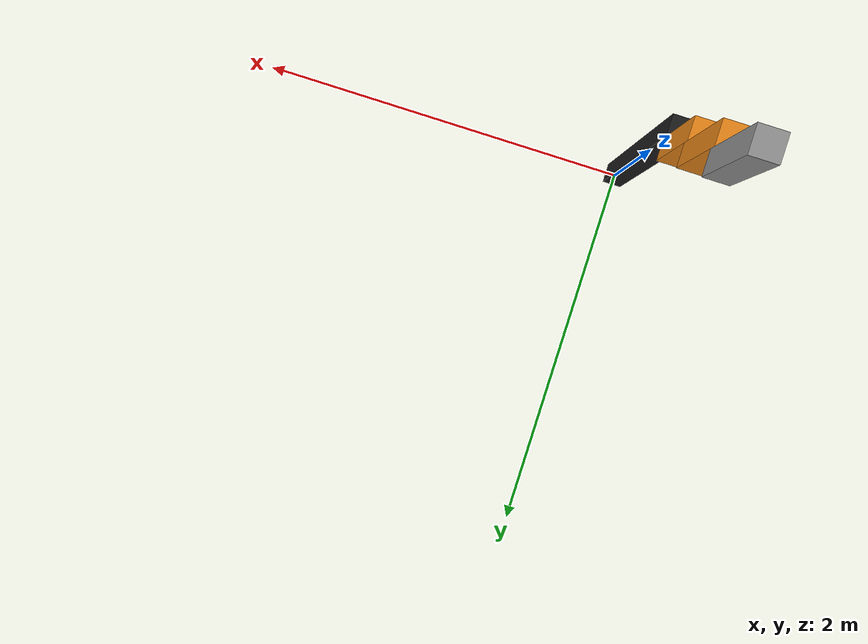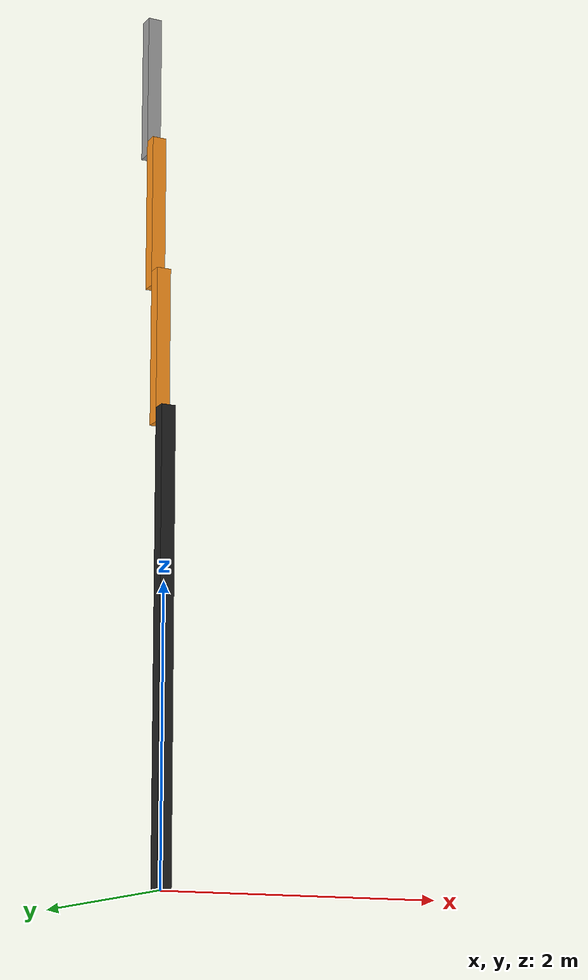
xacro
<?xml version="1.0"?>
<!-- RRR Manipulator -->
<robot name="rrr" xmlns:xacro="http://www.ros.org/wiki/xacro">

  <!-- Constants for robot dimensions -->
  <xacro:property name="mass" value="1" />
  <xacro:property name="width" value="0.1" />
  <xacro:property name="height1" value="3.2" />
  <xacro:property name="height2" value="1.1" />
  <xacro:property name="height3" value="1.1" />
  <xacro:property name="height4" value="1.05" />

  <xacro:property name="axel_offset" value="0.05" />

  <xacro:include filename="$(find rangeaero_assignment)/rrr_description/urdf/rrr.gazebo" />
  <xacro:include filename="$(find rangeaero_assignment)/rrr_description/urdf/materials.xacro" />

  <link name="world"/>

  <joint name="fixed" type="fixed">
    <parent link="world"/>
    <child link="link1"/>
  </joint>

  <link name="link1">
    <collision>
      <origin xyz="0 0 ${height1/2}" rpy="0 0 0"/>
      <geometry>
	<box size="${width} ${width} ${height1}"/>
      </geometry>
    </collision>

    <visual>
      <origin xyz="0 0 ${height1/2}" rpy="0 0 0"/>
      <geometry>
	<box size="${width} ${width} ${height1}"/>
      </geometry>
      <material name="black"/>
    </visual>

    <inertial>
      <origin xyz="0 0 ${height1/2}" rpy="0 0 0"/>
      <mass value="${mass}"/>
      <inertia
	  ixx="${mass / 12.0 * (width*width + height1*height1)}" ixy="0.0" ixz="0.0"
	  iyy="${mass / 12.0 * (height1*height1 + width*width)}" iyz="0.0"
	  izz="${mass / 12.0 * (width*width + width*width)}"/>
    </inertial>
  </link>

  <joint name="joint1" type="continuous">
    <parent link="link1"/>
    <child link="link2"/>
    <origin xyz="0 ${width} ${height1 - axel_offset}" rpy="0 0 0"/>
    <axis xyz="0 1 0"/>
    <dynamics damping="0.7"/>
  </joint>

  <link name="link2">
    <collision>
      <origin xyz="0 0 ${height2/2 - axel_offset}" rpy="0 0 0"/>
      <geometry>
	<box size="${width} ${width} ${height2}"/>
      </geometry>
    </collision>

    <visual>
      <origin xyz="0 0 ${height2/2 - axel_offset}" rpy="0 0 0"/>
      <geometry>
	<box size="${width} ${width} ${height2}"/>
      </geometry>
      <material name="orange"/>
    </visual>

    <inertial>
      <origin xyz="0 0 ${height2/2 - axel_offset}" rpy="0 0 0"/>
      <mass value="${mass}"/>
      <inertia
	  ixx="${mass / 12.0 * (width*width + height2*height2)}" ixy="0.0" ixz="0.0"
	  iyy="${mass / 12.0 * (height2*height2 + width*width)}" iyz="0.0"
	  izz="${mass / 12.0 * (width*width + width*width)}"/>
    </inertial>
  </link>

  <joint name="joint2" type="continuous">
    <parent link="link2"/>
    <child link="link3"/>
    <origin xyz="0 ${width} ${height2 - axel_offset*2}" rpy="0 0 0"/>
    <axis xyz="0 1 0"/>
    <dynamics damping="0.7"/>
  </joint>

  <link name="link3">
    <collision>
      <origin xyz="0 0 ${height3/2 - axel_offset}" rpy="0 0 0"/>
      <geometry>
	<box size="${width} ${width} ${height3}"/>
      </geometry>
    </collision>

    <visual>
      <origin xyz="0 0 ${height3/2 - axel_offset}" rpy="0 0 0"/>
      <geometry>
	<box size="${width} ${width} ${height3}"/>
      </geometry>
      <material name="orange"/>
    </visual>

    <inertial>
      <origin xyz="0 0 ${height3/2 - axel_offset}" rpy="0 0 0"/>
      <mass value="${mass}"/>
      <inertia
	  ixx="${mass / 12.0 * (width*width + height3*height3)}" ixy="0.0" ixz="0.0"
	  iyy="${mass / 12.0 * (height3*height3 + width*width)}" iyz="0.0"
	  izz="${mass / 12.0 * (width*width + width*width)}"/>
    </inertial>
  </link>

  <joint name="joint3" type="continuous">
    <parent link="link3"/>
    <child link="link4"/>
    <origin xyz="0 ${width} ${height2 - axel_offset*2}" rpy="0 0 0"/>
    <axis xyz="0 1 0"/>
    <dynamics damping="0.7"/>
  </joint>

  <link name="link4">
    <collision>
      <origin xyz="0 0 ${height4/2 - axel_offset}" rpy="0 0 0"/>
      <geometry>
	<box size="${width} ${width} ${height4}"/>
      </geometry>
    </collision>

    <visual>
      <origin xyz="0 0 ${height4/2 - axel_offset}" rpy="0 0 0"/>
      <geometry>
	<box size="${width} ${width} ${height4}"/>
      </geometry>
      <material name="grey"/>
    </visual>

    <inertial>
      <origin xyz="0 0 ${height4/2 - axel_offset}" rpy="0 0 0"/>
      <mass value="${mass}"/>
      <inertia
	  ixx="${mass / 12.0 * (width*width + height2*height2)}" ixy="0.0" ixz="0.0"
	  iyy="${mass / 12.0 * (height2*height4 + width*width)}" iyz="0.0"
	  izz="${mass / 12.0 * (width*width + width*width)}"/>
    </inertial>
  </link>

  <transmission name="tran1">
    <type>transmission_interface/SimpleTransmission</type>
    <joint name="joint1">
      <hardwareInterface>hardware_interface/EffortJointInterface</hardwareInterface>
    </joint>
    <actuator name="motor1">
      <hardwareInterface>hardware_interface/EffortJointInterface</hardwareInterface>
      <mechanicalReduction>1</mechanicalReduction>
    </actuator>
  </transmission>

  <transmission name="tran2">
    <type>transmission_interface/SimpleTransmission</type>
    <joint name="joint2">
      <hardwareInterface>hardware_interface/EffortJointInterface</hardwareInterface>
    </joint>
    <actuator name="motor2">
      <hardwareInterface>hardware_interface/EffortJointInterface</hardwareInterface>
      <mechanicalReduction>1</mechanicalReduction>
    </actuator>
  </transmission>

  <transmission name="tran3">
    <type>transmission_interface/SimpleTransmission</type>
    <joint name="joint3">
      <hardwareInterface>hardware_interface/EffortJointInterface</hardwareInterface>
    </joint>
    <actuator name="motor3">
      <hardwareInterface>hardware_interface/EffortJointInterface</hardwareInterface>
      <mechanicalReduction>1</mechanicalReduction>
    </actuator>
  </transmission>

</robot>
